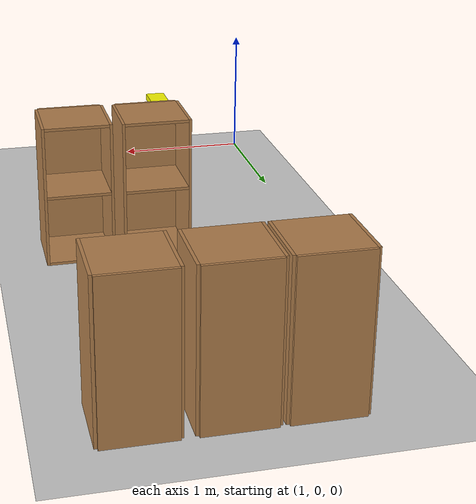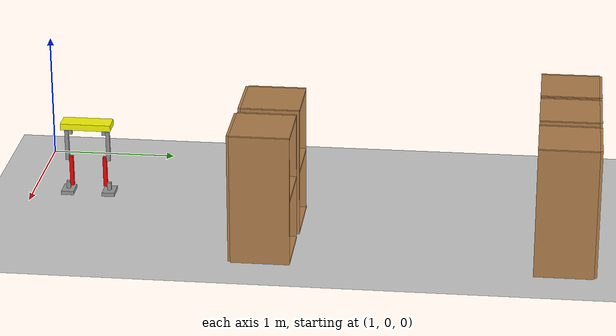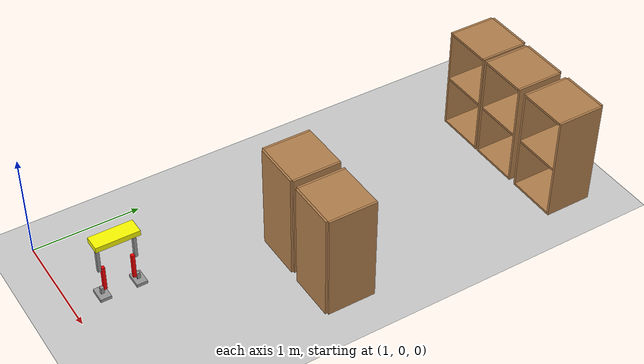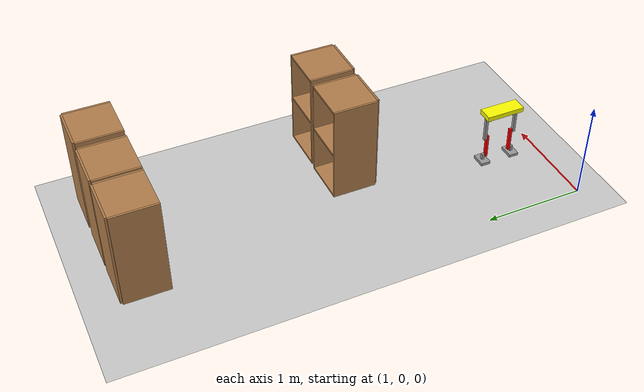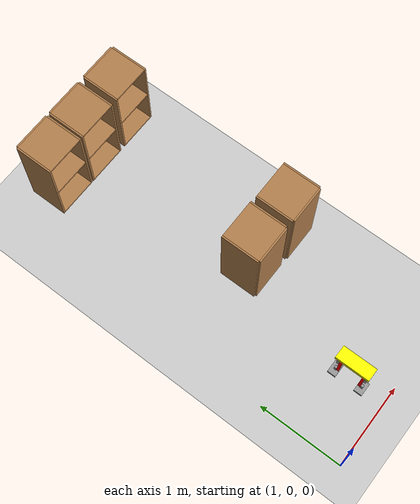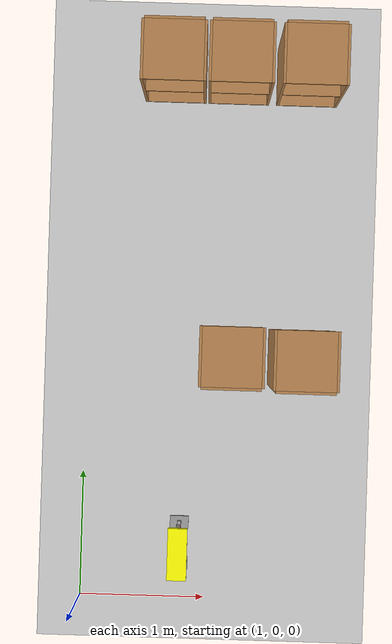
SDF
<sdf version="1.6">
 <world name="default">
  <model name="ground_plane">
   <static>1</static>
   <link name="link">
    <collision name="collision">
     <geometry><plane><normal>0 0 1</normal><size>100 100</size></plane></geometry>
     <surface><friction><ode><mu>100</mu><mu2>50</mu2></ode></friction></surface>
    </collision>
    <visual name="visual">
     <cast_shadows>0</cast_shadows>
     <geometry><plane><normal>0 0 1</normal><size>100 100</size></plane></geometry>
     <material>
      <script><uri>file://media/materials/scripts/gazebo.material</uri><name>Gazebo/Grey</name></script>
     </material>
    </visual>
   </link>
  </model>
  <model name="cabinet">
   <static>1</static>
   <link name="cabinet_bottom_plate">
    <inertial>
     <pose>0 0 -1 0 -0 0</pose>
     <inertia><ixx>2.05</ixx><ixy>0</ixy><ixz>0</ixz><iyy>2.05</iyy><iyz>0</iyz><izz>2.05</izz></inertia>
     <mass>25</mass>
    </inertial>
    <collision name="cabinet_bottom_plate_geom">
     <pose>0 0 0.01 0 -0 0</pose>
     <geometry><box><size>0.45 0.45 0.02</size></box></geometry>
    </collision>
    <visual name="cabinet_bottom_plate_geom_visual">
     <pose>0 0 0.01 0 -0 0</pose>
     <geometry><box><size>0.45 0.45 0.02</size></box></geometry>
     <material>
      <script><uri>file://media/materials/scripts/gazebo.material</uri><name>Gazebo/Wood</name></script>
     </material>
    </visual>
    <collision name="cabinet_bottom_plate_geom_cabinet_back_plate">
     <pose>0.235 0 0.51 0 -0 0</pose>
     <geometry><box><size>0.02 0.45 1.02</size></box></geometry>
    </collision>
    <visual name="cabinet_bottom_plate_geom_cabinet_back_plate_visual">
     <pose>0.235 0 0.51 0 -0 0</pose>
     <geometry><box><size>0.02 0.45 1.02</size></box></geometry>
     <material>
      <script><uri>file://media/materials/scripts/gazebo.material</uri><name>Gazebo/Wood</name></script>
     </material>
    </visual>
    <collision name="cabinet_bottom_plate_geom_cabinet_left_plate">
     <pose>0 0.235 0.51 0 -0 0</pose>
     <geometry><box><size>0.45 0.02 1.02</size></box></geometry>
    </collision>
    <visual name="cabinet_bottom_plate_geom_cabinet_left_plate_visual">
     <pose>0 0.235 0.51 0 -0 0</pose>
     <geometry><box><size>0.45 0.02 1.02</size></box></geometry>
     <material>
      <script><uri>file://media/materials/scripts/gazebo.material</uri><name>Gazebo/Wood</name></script>
     </material>
    </visual>
    <collision name="cabinet_bottom_plate_geom_cabinet_middle_plate">
     <pose>0 0 0.51 0 -0 0</pose>
     <geometry><box><size>0.45 0.45 0.02</size></box></geometry>
    </collision>
    <visual name="cabinet_bottom_plate_geom_cabinet_middle_plate_visual">
     <pose>0 0 0.51 0 -0 0</pose>
     <geometry><box><size>0.45 0.45 0.02</size></box></geometry>
     <material>
      <script><uri>file://media/materials/scripts/gazebo.material</uri><name>Gazebo/Wood</name></script>
     </material>
    </visual>
    <collision name="cabinet_bottom_plate_geom_cabinet_right_plate">
     <pose>0 -0.235 0.51 0 -0 0</pose>
     <geometry><box><size>0.45 0.02 1.02</size></box></geometry>
    </collision>
    <visual name="cabinet_bottom_plate_geom_cabinet_right_plate_visual">
     <pose>0 -0.235 0.51 0 -0 0</pose>
     <geometry><box><size>0.45 0.02 1.02</size></box></geometry>
     <material>
      <script><uri>file://media/materials/scripts/gazebo.material</uri><name>Gazebo/Wood</name></script>
     </material>
    </visual>
    <collision name="cabinet_bottom_plate_geom_cabinet_top_plate">
     <pose>0 0 1.01 0 -0 0</pose>
     <geometry><box><size>0.45 0.45 0.02</size></box></geometry>
    </collision>
    <visual name="cabinet_bottom_plate_geom_cabinet_top_plate_visual">
     <pose>0 0 1.01 0 -0 0</pose>
     <geometry><box><size>0.45 0.45 0.02</size></box></geometry>
     <material>
      <script><uri>file://media/materials/scripts/gazebo.material</uri><name>Gazebo/Wood</name></script>
     </material>
    </visual>
   </link>
   <pose>2.16087 1.98414 0 0 0 -1.5708</pose>
  </model>
  <model name="cabinet_0">
   <static>1</static>
   <link name="cabinet_bottom_plate">
    <inertial>
     <pose>0 0 -1 0 -0 0</pose>
     <inertia><ixx>2.05</ixx><ixy>0</ixy><ixz>0</ixz><iyy>2.05</iyy><iyz>0</iyz><izz>2.05</izz></inertia>
     <mass>25</mass>
    </inertial>
    <collision name="cabinet_bottom_plate_geom">
     <pose>0 0 0.01 0 -0 0</pose>
     <geometry><box><size>0.45 0.45 0.02</size></box></geometry>
    </collision>
    <visual name="cabinet_bottom_plate_geom_visual">
     <pose>0 0 0.01 0 -0 0</pose>
     <geometry><box><size>0.45 0.45 0.02</size></box></geometry>
     <material>
      <script><uri>file://media/materials/scripts/gazebo.material</uri><name>Gazebo/Wood</name></script>
     </material>
    </visual>
    <collision name="cabinet_bottom_plate_geom_cabinet_back_plate">
     <pose>0.235 0 0.51 0 -0 0</pose>
     <geometry><box><size>0.02 0.45 1.02</size></box></geometry>
    </collision>
    <visual name="cabinet_bottom_plate_geom_cabinet_back_plate_visual">
     <pose>0.235 0 0.51 0 -0 0</pose>
     <geometry><box><size>0.02 0.45 1.02</size></box></geometry>
     <material>
      <script><uri>file://media/materials/scripts/gazebo.material</uri><name>Gazebo/Wood</name></script>
     </material>
    </visual>
    <collision name="cabinet_bottom_plate_geom_cabinet_left_plate">
     <pose>0 0.235 0.51 0 -0 0</pose>
     <geometry><box><size>0.45 0.02 1.02</size></box></geometry>
    </collision>
    <visual name="cabinet_bottom_plate_geom_cabinet_left_plate_visual">
     <pose>0 0.235 0.51 0 -0 0</pose>
     <geometry><box><size>0.45 0.02 1.02</size></box></geometry>
     <material>
      <script><uri>file://media/materials/scripts/gazebo.material</uri><name>Gazebo/Wood</name></script>
     </material>
    </visual>
    <collision name="cabinet_bottom_plate_geom_cabinet_middle_plate">
     <pose>0 0 0.51 0 -0 0</pose>
     <geometry><box><size>0.45 0.45 0.02</size></box></geometry>
    </collision>
    <visual name="cabinet_bottom_plate_geom_cabinet_middle_plate_visual">
     <pose>0 0 0.51 0 -0 0</pose>
     <geometry><box><size>0.45 0.45 0.02</size></box></geometry>
     <material>
      <script><uri>file://media/materials/scripts/gazebo.material</uri><name>Gazebo/Wood</name></script>
     </material>
    </visual>
    <collision name="cabinet_bottom_plate_geom_cabinet_right_plate">
     <pose>0 -0.235 0.51 0 -0 0</pose>
     <geometry><box><size>0.45 0.02 1.02</size></box></geometry>
    </collision>
    <visual name="cabinet_bottom_plate_geom_cabinet_right_plate_visual">
     <pose>0 -0.235 0.51 0 -0 0</pose>
     <geometry><box><size>0.45 0.02 1.02</size></box></geometry>
     <material>
      <script><uri>file://media/materials/scripts/gazebo.material</uri><name>Gazebo/Wood</name></script>
     </material>
    </visual>
    <collision name="cabinet_bottom_plate_geom_cabinet_top_plate">
     <pose>0 0 1.01 0 -0 0</pose>
     <geometry><box><size>0.45 0.45 0.02</size></box></geometry>
    </collision>
    <visual name="cabinet_bottom_plate_geom_cabinet_top_plate_visual">
     <pose>0 0 1.01 0 -0 0</pose>
     <geometry><box><size>0.45 0.45 0.02</size></box></geometry>
     <material>
      <script><uri>file://media/materials/scripts/gazebo.material</uri><name>Gazebo/Wood</name></script>
     </material>
    </visual>
   </link>
   <pose>2.71494 1.97132 0 0 0 -1.5708</pose>
  </model>
  <model name="cabinet_1">
   <static>1</static>
   <link name="cabinet_bottom_plate">
    <inertial>
     <pose>0 0 -1 0 -0 0</pose>
     <inertia><ixx>2.05</ixx><ixy>0</ixy><ixz>0</ixz><iyy>2.05</iyy><iyz>0</iyz><izz>2.05</izz></inertia>
     <mass>25</mass>
    </inertial>
    <collision name="cabinet_bottom_plate_geom">
     <pose>0 0 0.01 0 -0 0</pose>
     <geometry><box><size>0.45 0.45 0.02</size></box></geometry>
    </collision>
    <visual name="cabinet_bottom_plate_geom_visual">
     <pose>0 0 0.01 0 -0 0</pose>
     <geometry><box><size>0.45 0.45 0.02</size></box></geometry>
     <material>
      <script><uri>file://media/materials/scripts/gazebo.material</uri><name>Gazebo/Wood</name></script>
     </material>
    </visual>
    <collision name="cabinet_bottom_plate_geom_cabinet_back_plate">
     <pose>0.235 0 0.51 0 -0 0</pose>
     <geometry><box><size>0.02 0.45 1.02</size></box></geometry>
    </collision>
    <visual name="cabinet_bottom_plate_geom_cabinet_back_plate_visual">
     <pose>0.235 0 0.51 0 -0 0</pose>
     <geometry><box><size>0.02 0.45 1.02</size></box></geometry>
     <material>
      <script><uri>file://media/materials/scripts/gazebo.material</uri><name>Gazebo/Wood</name></script>
     </material>
    </visual>
    <collision name="cabinet_bottom_plate_geom_cabinet_left_plate">
     <pose>0 0.235 0.51 0 -0 0</pose>
     <geometry><box><size>0.45 0.02 1.02</size></box></geometry>
    </collision>
    <visual name="cabinet_bottom_plate_geom_cabinet_left_plate_visual">
     <pose>0 0.235 0.51 0 -0 0</pose>
     <geometry><box><size>0.45 0.02 1.02</size></box></geometry>
     <material>
      <script><uri>file://media/materials/scripts/gazebo.material</uri><name>Gazebo/Wood</name></script>
     </material>
    </visual>
    <collision name="cabinet_bottom_plate_geom_cabinet_middle_plate">
     <pose>0 0 0.51 0 -0 0</pose>
     <geometry><box><size>0.45 0.45 0.02</size></box></geometry>
    </collision>
    <visual name="cabinet_bottom_plate_geom_cabinet_middle_plate_visual">
     <pose>0 0 0.51 0 -0 0</pose>
     <geometry><box><size>0.45 0.45 0.02</size></box></geometry>
     <material>
      <script><uri>file://media/materials/scripts/gazebo.material</uri><name>Gazebo/Wood</name></script>
     </material>
    </visual>
    <collision name="cabinet_bottom_plate_geom_cabinet_right_plate">
     <pose>0 -0.235 0.51 0 -0 0</pose>
     <geometry><box><size>0.45 0.02 1.02</size></box></geometry>
    </collision>
    <visual name="cabinet_bottom_plate_geom_cabinet_right_plate_visual">
     <pose>0 -0.235 0.51 0 -0 0</pose>
     <geometry><box><size>0.45 0.02 1.02</size></box></geometry>
     <material>
      <script><uri>file://media/materials/scripts/gazebo.material</uri><name>Gazebo/Wood</name></script>
     </material>
    </visual>
    <collision name="cabinet_bottom_plate_geom_cabinet_top_plate">
     <pose>0 0 1.01 0 -0 0</pose>
     <geometry><box><size>0.45 0.45 0.02</size></box></geometry>
    </collision>
    <visual name="cabinet_bottom_plate_geom_cabinet_top_plate_visual">
     <pose>0 0 1.01 0 -0 0</pose>
     <geometry><box><size>0.45 0.45 0.02</size></box></geometry>
     <material>
      <script><uri>file://media/materials/scripts/gazebo.material</uri><name>Gazebo/Wood</name></script>
     </material>
    </visual>
   </link>
   <pose>2.72118 4.23872 0 0 -0 1.5708</pose>
  </model>
  <model name="cabinet_1_clone">
   <static>1</static>
   <link name="cabinet_bottom_plate">
    <inertial>
     <pose>0 0 -1 0 -0 0</pose>
     <inertia><ixx>2.05</ixx><ixy>0</ixy><ixz>0</ixz><iyy>2.05</iyy><iyz>0</iyz><izz>2.05</izz></inertia>
     <mass>25</mass>
    </inertial>
    <collision name="cabinet_bottom_plate_geom">
     <pose>0 0 0.01 0 -0 0</pose>
     <geometry><box><size>0.45 0.45 0.02</size></box></geometry>
    </collision>
    <visual name="cabinet_bottom_plate_geom_visual">
     <pose>0 0 0.01 0 -0 0</pose>
     <geometry><box><size>0.45 0.45 0.02</size></box></geometry>
     <material>
      <script><uri>file://media/materials/scripts/gazebo.material</uri><name>Gazebo/Wood</name></script>
     </material>
    </visual>
    <collision name="cabinet_bottom_plate_geom_cabinet_back_plate">
     <pose>0.235 0 0.51 0 -0 0</pose>
     <geometry><box><size>0.02 0.45 1.02</size></box></geometry>
    </collision>
    <visual name="cabinet_bottom_plate_geom_cabinet_back_plate_visual">
     <pose>0.235 0 0.51 0 -0 0</pose>
     <geometry><box><size>0.02 0.45 1.02</size></box></geometry>
     <material>
      <script><uri>file://media/materials/scripts/gazebo.material</uri><name>Gazebo/Wood</name></script>
     </material>
    </visual>
    <collision name="cabinet_bottom_plate_geom_cabinet_left_plate">
     <pose>0 0.235 0.51 0 -0 0</pose>
     <geometry><box><size>0.45 0.02 1.02</size></box></geometry>
    </collision>
    <visual name="cabinet_bottom_plate_geom_cabinet_left_plate_visual">
     <pose>0 0.235 0.51 0 -0 0</pose>
     <geometry><box><size>0.45 0.02 1.02</size></box></geometry>
     <material>
      <script><uri>file://media/materials/scripts/gazebo.material</uri><name>Gazebo/Wood</name></script>
     </material>
    </visual>
    <collision name="cabinet_bottom_plate_geom_cabinet_middle_plate">
     <pose>0 0 0.51 0 -0 0</pose>
     <geometry><box><size>0.45 0.45 0.02</size></box></geometry>
    </collision>
    <visual name="cabinet_bottom_plate_geom_cabinet_middle_plate_visual">
     <pose>0 0 0.51 0 -0 0</pose>
     <geometry><box><size>0.45 0.45 0.02</size></box></geometry>
     <material>
      <script><uri>file://media/materials/scripts/gazebo.material</uri><name>Gazebo/Wood</name></script>
     </material>
    </visual>
    <collision name="cabinet_bottom_plate_geom_cabinet_right_plate">
     <pose>0 -0.235 0.51 0 -0 0</pose>
     <geometry><box><size>0.45 0.02 1.02</size></box></geometry>
    </collision>
    <visual name="cabinet_bottom_plate_geom_cabinet_right_plate_visual">
     <pose>0 -0.235 0.51 0 -0 0</pose>
     <geometry><box><size>0.45 0.02 1.02</size></box></geometry>
     <material>
      <script><uri>file://media/materials/scripts/gazebo.material</uri><name>Gazebo/Wood</name></script>
     </material>
    </visual>
    <collision name="cabinet_bottom_plate_geom_cabinet_top_plate">
     <pose>0 0 1.01 0 -0 0</pose>
     <geometry><box><size>0.45 0.45 0.02</size></box></geometry>
    </collision>
    <visual name="cabinet_bottom_plate_geom_cabinet_top_plate_visual">
     <pose>0 0 1.01 0 -0 0</pose>
     <geometry><box><size>0.45 0.45 0.02</size></box></geometry>
     <material>
      <script><uri>file://media/materials/scripts/gazebo.material</uri><name>Gazebo/Wood</name></script>
     </material>
    </visual>
   </link>
   <pose>2.16972 4.23875 0 0 -0 1.5708</pose>
  </model>
  <model name="cabinet_1_clone_0">
   <static>1</static>
   <link name="cabinet_bottom_plate">
    <inertial>
     <pose>0 0 -1 0 -0 0</pose>
     <inertia><ixx>2.05</ixx><ixy>0</ixy><ixz>0</ixz><iyy>2.05</iyy><iyz>0</iyz><izz>2.05</izz></inertia>
     <mass>25</mass>
    </inertial>
    <collision name="cabinet_bottom_plate_geom">
     <pose>0 0 0.01 0 -0 0</pose>
     <geometry><box><size>0.45 0.45 0.02</size></box></geometry>
    </collision>
    <visual name="cabinet_bottom_plate_geom_visual">
     <pose>0 0 0.01 0 -0 0</pose>
     <geometry><box><size>0.45 0.45 0.02</size></box></geometry>
     <material>
      <script><uri>file://media/materials/scripts/gazebo.material</uri><name>Gazebo/Wood</name></script>
     </material>
    </visual>
    <collision name="cabinet_bottom_plate_geom_cabinet_back_plate">
     <pose>0.235 0 0.51 0 -0 0</pose>
     <geometry><box><size>0.02 0.45 1.02</size></box></geometry>
    </collision>
    <visual name="cabinet_bottom_plate_geom_cabinet_back_plate_visual">
     <pose>0.235 0 0.51 0 -0 0</pose>
     <geometry><box><size>0.02 0.45 1.02</size></box></geometry>
     <material>
      <script><uri>file://media/materials/scripts/gazebo.material</uri><name>Gazebo/Wood</name></script>
     </material>
    </visual>
    <collision name="cabinet_bottom_plate_geom_cabinet_left_plate">
     <pose>0 0.235 0.51 0 -0 0</pose>
     <geometry><box><size>0.45 0.02 1.02</size></box></geometry>
    </collision>
    <visual name="cabinet_bottom_plate_geom_cabinet_left_plate_visual">
     <pose>0 0.235 0.51 0 -0 0</pose>
     <geometry><box><size>0.45 0.02 1.02</size></box></geometry>
     <material>
      <script><uri>file://media/materials/scripts/gazebo.material</uri><name>Gazebo/Wood</name></script>
     </material>
    </visual>
    <collision name="cabinet_bottom_plate_geom_cabinet_middle_plate">
     <pose>0 0 0.51 0 -0 0</pose>
     <geometry><box><size>0.45 0.45 0.02</size></box></geometry>
    </collision>
    <visual name="cabinet_bottom_plate_geom_cabinet_middle_plate_visual">
     <pose>0 0 0.51 0 -0 0</pose>
     <geometry><box><size>0.45 0.45 0.02</size></box></geometry>
     <material>
      <script><uri>file://media/materials/scripts/gazebo.material</uri><name>Gazebo/Wood</name></script>
     </material>
    </visual>
    <collision name="cabinet_bottom_plate_geom_cabinet_right_plate">
     <pose>0 -0.235 0.51 0 -0 0</pose>
     <geometry><box><size>0.45 0.02 1.02</size></box></geometry>
    </collision>
    <visual name="cabinet_bottom_plate_geom_cabinet_right_plate_visual">
     <pose>0 -0.235 0.51 0 -0 0</pose>
     <geometry><box><size>0.45 0.02 1.02</size></box></geometry>
     <material>
      <script><uri>file://media/materials/scripts/gazebo.material</uri><name>Gazebo/Wood</name></script>
     </material>
    </visual>
    <collision name="cabinet_bottom_plate_geom_cabinet_top_plate">
     <pose>0 0 1.01 0 -0 0</pose>
     <geometry><box><size>0.45 0.45 0.02</size></box></geometry>
    </collision>
    <visual name="cabinet_bottom_plate_geom_cabinet_top_plate_visual">
     <pose>0 0 1.01 0 -0 0</pose>
     <geometry><box><size>0.45 0.45 0.02</size></box></geometry>
     <material>
      <script><uri>file://media/materials/scripts/gazebo.material</uri><name>Gazebo/Wood</name></script>
     </material>
    </visual>
   </link>
   <pose>1.66293 4.2393 0 0 -0 1.5708</pose>
  </model>
  <model name="HumanoidRobot_0_clone">
   <link name="link_1">
    <inertial>
     <mass>1</mass>
     <inertia>
      <ixx>0.166667</ixx>
      <ixy>0</ixy>
      <ixz>0</ixz>
      <iyy>0.166667</iyy>
      <iyz>0</iyz>
      <izz>0.166667</izz>
     </inertia>
    </inertial>
    <pose>0 0 0.585 0 -0 0</pose>
    <self_collide>1</self_collide>
    <visual name="ModelPreview_0::link_1::visual_2">
     <pose>0 -0.135 -0.055 0 -0 0</pose>
     <geometry><box><size>0.03 0.03 0.06</size></box></geometry>
     <material>
      <lighting>1</lighting>
      <script><uri>file://media/materials/scripts/gazebo.material</uri><name>Gazebo/Grey</name></script>
      <shader type="vertex"><normal_map>__default__</normal_map></shader>
      <ambient>0.3 0.3 0.3 1</ambient>
      <diffuse>0.7 0.7 0.7 1</diffuse>
      <specular>0.01 0.01 0.01 1</specular>
      <emissive>0 0 0 1</emissive>
     </material>
    </visual>
    <visual name="ModelPreview_0::link_1::visual_1">
     <pose>0 0.135 -0.055 0 -0 0</pose>
     <geometry><box><size>0.03 0.03 0.06</size></box></geometry>
     <material>
      <lighting>1</lighting>
      <script><uri>file://media/materials/scripts/gazebo.material</uri><name>Gazebo/Grey</name></script>
      <shader type="vertex"><normal_map>__default__</normal_map></shader>
      <ambient>0.3 0.3 0.3 1</ambient>
      <diffuse>0.7 0.7 0.7 1</diffuse>
      <specular>0.01 0.01 0.01 1</specular>
      <emissive>0 0 0 1</emissive>
     </material>
    </visual>
    <visual name="visual">
     <geometry><box><size>0.15 0.4 0.05</size></box></geometry>
     <material>
      <lighting>1</lighting>
      <script><uri>file://media/materials/scripts/gazebo.material</uri><name>Gazebo/Grey</name></script>
      <shader type="vertex"><normal_map>__default__</normal_map></shader>
      <ambient>1 1 0 1</ambient>
      <diffuse>0.7 0.7 0.7 1</diffuse>
      <specular>0.01 0.01 0.01 1</specular>
      <emissive>0 0 0 1</emissive>
     </material>
    </visual>
    <collision name="collision">
     <geometry><box><size>0.15 0.4 0.05</size></box></geometry>
     <surface>
      <friction>
       <ode><mu>1</mu><mu2>1</mu2><fdir1>0 0 0</fdir1><slip1>0</slip1><slip2>0</slip2></ode>
       <torsional>
        <coefficient>1</coefficient>
        <patch_radius>0</patch_radius>
        <surface_radius>0</surface_radius>
        <use_patch_radius>1</use_patch_radius>
        <ode><slip>0</slip></ode>
       </torsional>
      </friction>
      <bounce><restitution_coefficient>0</restitution_coefficient><threshold>1e+06</threshold></bounce>
      <contact>
       <collide_without_contact>0</collide_without_contact>
       <collide_without_contact_bitmask>1</collide_without_contact_bitmask>
       <collide_bitmask>1</collide_bitmask>
       <ode>
        <soft_cfm>0</soft_cfm>
        <soft_erp>0.2</soft_erp>
        <kp>1e+13</kp>
        <kd>1</kd>
        <max_vel>0.01</max_vel>
        <min_depth>0</min_depth>
       </ode>
       <bullet>
        <split_impulse>1</split_impulse>
        <split_impulse_penetration_threshold>-0.01</split_impulse_penetration_threshold>
        <soft_cfm>0</soft_cfm>
        <soft_erp>0.2</soft_erp>
        <kp>1e+13</kp>
        <kd>1</kd>
       </bullet>
      </contact>
     </surface>
    </collision>
    <collision name="collision_2">
     <pose>0 -0.135 -0.055 0 -0 0</pose>
     <geometry><box><size>0.03 0.03 0.06</size></box></geometry>
     <surface>
      <friction>
       <ode><mu>1</mu><mu2>1</mu2><fdir1>0 0 0</fdir1><slip1>0</slip1><slip2>0</slip2></ode>
       <torsional>
        <coefficient>1</coefficient>
        <patch_radius>0</patch_radius>
        <surface_radius>0</surface_radius>
        <use_patch_radius>1</use_patch_radius>
        <ode><slip>0</slip></ode>
       </torsional>
      </friction>
      <bounce><restitution_coefficient>0</restitution_coefficient><threshold>1e+06</threshold></bounce>
      <contact>
       <collide_without_contact>0</collide_without_contact>
       <collide_without_contact_bitmask>1</collide_without_contact_bitmask>
       <collide_bitmask>1</collide_bitmask>
       <ode>
        <soft_cfm>0</soft_cfm>
        <soft_erp>0.2</soft_erp>
        <kp>1e+13</kp>
        <kd>1</kd>
        <max_vel>0.01</max_vel>
        <min_depth>0</min_depth>
       </ode>
       <bullet>
        <split_impulse>1</split_impulse>
        <split_impulse_penetration_threshold>-0.01</split_impulse_penetration_threshold>
        <soft_cfm>0</soft_cfm>
        <soft_erp>0.2</soft_erp>
        <kp>1e+13</kp>
        <kd>1</kd>
       </bullet>
      </contact>
     </surface>
    </collision>
    <collision name="collision_1">
     <pose>0 0.135 -0.055 0 -0 0</pose>
     <geometry><box><size>0.03 0.03 0.06</size></box></geometry>
     <surface>
      <friction>
       <ode><mu>1</mu><mu2>1</mu2><fdir1>0 0 0</fdir1><slip1>0</slip1><slip2>0</slip2></ode>
       <torsional>
        <coefficient>1</coefficient>
        <patch_radius>0</patch_radius>
        <surface_radius>0</surface_radius>
        <use_patch_radius>1</use_patch_radius>
        <ode><slip>0</slip></ode>
       </torsional>
      </friction>
      <bounce><restitution_coefficient>0</restitution_coefficient><threshold>1e+06</threshold></bounce>
      <contact>
       <collide_without_contact>0</collide_without_contact>
       <collide_without_contact_bitmask>1</collide_without_contact_bitmask>
       <collide_bitmask>1</collide_bitmask>
       <ode>
        <soft_cfm>0</soft_cfm>
        <soft_erp>0.2</soft_erp>
        <kp>1e+13</kp>
        <kd>1</kd>
        <max_vel>0.01</max_vel>
        <min_depth>0</min_depth>
       </ode>
       <bullet>
        <split_impulse>1</split_impulse>
        <split_impulse_penetration_threshold>-0.01</split_impulse_penetration_threshold>
        <soft_cfm>0</soft_cfm>
        <soft_erp>0.2</soft_erp>
        <kp>1e+13</kp>
        <kd>1</kd>
       </bullet>
      </contact>
     </surface>
    </collision>
   </link>
   <link name="link_0">
    <inertial>
     <mass>1</mass>
     <inertia>
      <ixx>0.166667</ixx>
      <ixy>0</ixy>
      <ixz>0</ixz>
      <iyy>0.166667</iyy>
      <iyz>0</iyz>
      <izz>0.166667</izz>
     </inertia>
    </inertial>
    <pose>0 -0.165 0.015 0 -0 0</pose>
    <self_collide>1</self_collide>
    <visual name="ModelPreview_1::link_0::visual_1">
     <pose>0 0 0.045 0 -0 0</pose>
     <geometry><box><size>0.03 0.03 0.06</size></box></geometry>
     <material>
      <lighting>1</lighting>
      <script><uri>file://media/materials/scripts/gazebo.material</uri><name>Gazebo/Grey</name></script>
      <shader type="vertex"><normal_map>__default__</normal_map></shader>
      <ambient>0.3 0.3 0.3 1</ambient>
      <diffuse>0.7 0.7 0.7 1</diffuse>
      <specular>0.01 0.01 0.01 1</specular>
      <emissive>0 0 0 1</emissive>
     </material>
    </visual>
    <visual name="visual">
     <geometry><box><size>0.15 0.1 0.03</size></box></geometry>
     <material>
      <lighting>1</lighting>
      <script><uri>file://media/materials/scripts/gazebo.material</uri><name>Gazebo/Grey</name></script>
      <shader type="vertex"><normal_map>__default__</normal_map></shader>
      <ambient>0.3 0.3 0.3 1</ambient>
      <diffuse>0.7 0.7 0.7 1</diffuse>
      <specular>0.01 0.01 0.01 1</specular>
      <emissive>0 0 0 1</emissive>
     </material>
    </visual>
    <collision name="collision_1">
     <pose>0 0 0.045 0 -0 0</pose>
     <geometry><box><size>0.03 0.03 0.06</size></box></geometry>
     <surface>
      <friction>
       <ode><mu>1</mu><mu2>1</mu2><fdir1>0 0 0</fdir1><slip1>0</slip1><slip2>0</slip2></ode>
       <torsional>
        <coefficient>1</coefficient>
        <patch_radius>0</patch_radius>
        <surface_radius>0</surface_radius>
        <use_patch_radius>1</use_patch_radius>
        <ode><slip>0</slip></ode>
       </torsional>
      </friction>
      <bounce><restitution_coefficient>0</restitution_coefficient><threshold>1e+06</threshold></bounce>
      <contact>
       <collide_without_contact>0</collide_without_contact>
       <collide_without_contact_bitmask>1</collide_without_contact_bitmask>
       <collide_bitmask>1</collide_bitmask>
       <ode>
        <soft_cfm>0</soft_cfm>
        <soft_erp>0.2</soft_erp>
        <kp>1e+13</kp>
        <kd>1</kd>
        <max_vel>0.01</max_vel>
        <min_depth>0</min_depth>
       </ode>
       <bullet>
        <split_impulse>1</split_impulse>
        <split_impulse_penetration_threshold>-0.01</split_impulse_penetration_threshold>
        <soft_cfm>0</soft_cfm>
        <soft_erp>0.2</soft_erp>
        <kp>1e+13</kp>
        <kd>1</kd>
       </bullet>
      </contact>
     </surface>
    </collision>
    <collision name="collision">
     <geometry><box><size>0.15 0.1 0.03</size></box></geometry>
     <surface>
      <friction>
       <ode><mu>1</mu><mu2>1</mu2><fdir1>0 0 0</fdir1><slip1>0</slip1><slip2>0</slip2></ode>
       <torsional>
        <coefficient>1</coefficient>
        <patch_radius>0</patch_radius>
        <surface_radius>0</surface_radius>
        <use_patch_radius>1</use_patch_radius>
        <ode><slip>0</slip></ode>
       </torsional>
      </friction>
      <bounce><restitution_coefficient>0</restitution_coefficient><threshold>1e+06</threshold></bounce>
      <contact>
       <collide_without_contact>0</collide_without_contact>
       <collide_without_contact_bitmask>1</collide_without_contact_bitmask>
       <collide_bitmask>1</collide_bitmask>
       <ode>
        <soft_cfm>0</soft_cfm>
        <soft_erp>0.2</soft_erp>
        <kp>1e+13</kp>
        <kd>1</kd>
        <max_vel>0.01</max_vel>
        <min_depth>0</min_depth>
       </ode>
       <bullet>
        <split_impulse>1</split_impulse>
        <split_impulse_penetration_threshold>-0.01</split_impulse_penetration_threshold>
        <soft_cfm>0</soft_cfm>
        <soft_erp>0.2</soft_erp>
        <kp>1e+13</kp>
        <kd>1</kd>
       </bullet>
      </contact>
     </surface>
    </collision>
   </link>
   <link name="link_0_clone">
    <inertial>
     <mass>1</mass>
     <inertia>
      <ixx>0.166667</ixx>
      <ixy>0</ixy>
      <ixz>0</ixz>
      <iyy>0.166667</iyy>
      <iyz>0</iyz>
      <izz>0.166667</izz>
     </inertia>
    </inertial>
    <pose>0 0.165 0.015 0 -0 0</pose>
    <self_collide>1</self_collide>
    <visual name="visual">
     <geometry><box><size>0.15 0.1 0.03</size></box></geometry>
     <material>
      <lighting>1</lighting>
      <script><uri>file://media/materials/scripts/gazebo.material</uri><name>Gazebo/Grey</name></script>
      <shader type="vertex"><normal_map>__default__</normal_map></shader>
      <ambient>0.3 0.3 0.3 1</ambient>
      <diffuse>0.7 0.7 0.7 1</diffuse>
      <specular>0.01 0.01 0.01 1</specular>
      <emissive>0 0 0 1</emissive>
     </material>
    </visual>
    <visual name="visual_1">
     <pose>0 0 0.045 0 -0 0</pose>
     <geometry><box><size>0.03 0.03 0.06</size></box></geometry>
     <material>
      <lighting>1</lighting>
      <script><uri>file://media/materials/scripts/gazebo.material</uri><name>Gazebo/Grey</name></script>
      <shader type="vertex"><normal_map>__default__</normal_map></shader>
      <ambient>0.3 0.3 0.3 1</ambient>
      <diffuse>0.7 0.7 0.7 1</diffuse>
      <specular>0.01 0.01 0.01 1</specular>
      <emissive>0 0 0 1</emissive>
     </material>
    </visual>
    <collision name="collision">
     <geometry><box><size>0.15 0.1 0.03</size></box></geometry>
     <surface>
      <friction>
       <ode><mu>1</mu><mu2>1</mu2><fdir1>0 0 0</fdir1><slip1>0</slip1><slip2>0</slip2></ode>
       <torsional>
        <coefficient>1</coefficient>
        <patch_radius>0</patch_radius>
        <surface_radius>0</surface_radius>
        <use_patch_radius>1</use_patch_radius>
        <ode><slip>0</slip></ode>
       </torsional>
      </friction>
      <bounce><restitution_coefficient>0</restitution_coefficient><threshold>1e+06</threshold></bounce>
      <contact>
       <collide_without_contact>0</collide_without_contact>
       <collide_without_contact_bitmask>1</collide_without_contact_bitmask>
       <collide_bitmask>1</collide_bitmask>
       <ode>
        <soft_cfm>0</soft_cfm>
        <soft_erp>0.2</soft_erp>
        <kp>1e+13</kp>
        <kd>1</kd>
        <max_vel>0.01</max_vel>
        <min_depth>0</min_depth>
       </ode>
       <bullet>
        <split_impulse>1</split_impulse>
        <split_impulse_penetration_threshold>-0.01</split_impulse_penetration_threshold>
        <soft_cfm>0</soft_cfm>
        <soft_erp>0.2</soft_erp>
        <kp>1e+13</kp>
        <kd>1</kd>
       </bullet>
      </contact>
     </surface>
    </collision>
    <collision name="collision_1">
     <pose>0 0 0.045 0 -0 0</pose>
     <geometry><box><size>0.03 0.03 0.06</size></box></geometry>
     <surface>
      <friction>
       <ode><mu>1</mu><mu2>1</mu2><fdir1>0 0 0</fdir1><slip1>0</slip1><slip2>0</slip2></ode>
       <torsional>
        <coefficient>1</coefficient>
        <patch_radius>0</patch_radius>
        <surface_radius>0</surface_radius>
        <use_patch_radius>1</use_patch_radius>
        <ode><slip>0</slip></ode>
       </torsional>
      </friction>
      <bounce><restitution_coefficient>0</restitution_coefficient><threshold>1e+06</threshold></bounce>
      <contact>
       <collide_without_contact>0</collide_without_contact>
       <collide_without_contact_bitmask>1</collide_without_contact_bitmask>
       <collide_bitmask>1</collide_bitmask>
       <ode>
        <soft_cfm>0</soft_cfm>
        <soft_erp>0.2</soft_erp>
        <kp>1e+13</kp>
        <kd>1</kd>
        <max_vel>0.01</max_vel>
        <min_depth>0</min_depth>
       </ode>
       <bullet>
        <split_impulse>1</split_impulse>
        <split_impulse_penetration_threshold>-0.01</split_impulse_penetration_threshold>
        <soft_cfm>0</soft_cfm>
        <soft_erp>0.2</soft_erp>
        <kp>1e+13</kp>
        <kd>1</kd>
       </bullet>
      </contact>
     </surface>
    </collision>
   </link>
   <link name="link_2">
    <inertial>
     <mass>1</mass>
     <inertia>
      <ixx>0.166667</ixx>
      <ixy>0</ixy>
      <ixz>0</ixz>
      <iyy>0.166667</iyy>
      <iyz>0</iyz>
      <izz>0.166667</izz>
     </inertia>
    </inertial>
    <pose>0 -0.165 0.405 0 0.023326 0</pose>
    <self_collide>1</self_collide>
    <visual name="visual">
     <geometry><box><size>0.03 0.03 0.25</size></box></geometry>
     <material>
      <lighting>1</lighting>
      <script><uri>file://media/materials/scripts/gazebo.material</uri><name>Gazebo/Grey</name></script>
      <shader type="vertex"><normal_map>__default__</normal_map></shader>
      <ambient>0.3 0.3 0.3 1</ambient>
      <diffuse>0.7 0.7 0.7 1</diffuse>
      <specular>0.01 0.01 0.01 1</specular>
      <emissive>0 0 0 1</emissive>
     </material>
    </visual>
    <collision name="collision">
     <geometry><box><size>0.03 0.03 0.25</size></box></geometry>
     <surface>
      <friction>
       <ode><mu>1</mu><mu2>1</mu2><fdir1>0 0 0</fdir1><slip1>0</slip1><slip2>0</slip2></ode>
       <torsional>
        <coefficient>1</coefficient>
        <patch_radius>0</patch_radius>
        <surface_radius>0</surface_radius>
        <use_patch_radius>1</use_patch_radius>
        <ode><slip>0</slip></ode>
       </torsional>
      </friction>
      <bounce><restitution_coefficient>0</restitution_coefficient><threshold>1e+06</threshold></bounce>
      <contact>
       <collide_without_contact>0</collide_without_contact>
       <collide_without_contact_bitmask>1</collide_without_contact_bitmask>
       <collide_bitmask>1</collide_bitmask>
       <ode>
        <soft_cfm>0</soft_cfm>
        <soft_erp>0.2</soft_erp>
        <kp>1e+13</kp>
        <kd>1</kd>
        <max_vel>0.01</max_vel>
        <min_depth>0</min_depth>
       </ode>
       <bullet>
        <split_impulse>1</split_impulse>
        <split_impulse_penetration_threshold>-0.01</split_impulse_penetration_threshold>
        <soft_cfm>0</soft_cfm>
        <soft_erp>0.2</soft_erp>
        <kp>1e+13</kp>
        <kd>1</kd>
       </bullet>
      </contact>
     </surface>
    </collision>
   </link>
   <link name="link_2_clone">
    <inertial>
     <mass>1</mass>
     <inertia>
      <ixx>0.166667</ixx>
      <ixy>0</ixy>
      <ixz>0</ixz>
      <iyy>0.166667</iyy>
      <iyz>0</iyz>
      <izz>0.166667</izz>
     </inertia>
    </inertial>
    <pose>0 -0.135 0.185 0 0.023326 0</pose>
    <self_collide>1</self_collide>
    <visual name="visual">
     <geometry><box><size>0.03 0.03 0.25</size></box></geometry>
     <material>
      <lighting>1</lighting>
      <script><uri>file://media/materials/scripts/gazebo.material</uri><name>Gazebo/Grey</name></script>
      <shader type="vertex"><normal_map>__default__</normal_map></shader>
      <ambient>1 0 0 1</ambient>
      <diffuse>0.7 0.7 0.7 1</diffuse>
      <specular>0.01 0.01 0.01 1</specular>
      <emissive>0 0 0 1</emissive>
     </material>
    </visual>
    <collision name="collision">
     <geometry><box><size>0.03 0.03 0.25</size></box></geometry>
     <surface>
      <friction>
       <ode><mu>1</mu><mu2>1</mu2><fdir1>0 0 0</fdir1><slip1>0</slip1><slip2>0</slip2></ode>
       <torsional>
        <coefficient>1</coefficient>
        <patch_radius>0</patch_radius>
        <surface_radius>0</surface_radius>
        <use_patch_radius>1</use_patch_radius>
        <ode><slip>0</slip></ode>
       </torsional>
      </friction>
      <bounce><restitution_coefficient>0</restitution_coefficient><threshold>1e+06</threshold></bounce>
      <contact>
       <collide_without_contact>0</collide_without_contact>
       <collide_without_contact_bitmask>1</collide_without_contact_bitmask>
       <collide_bitmask>1</collide_bitmask>
       <ode>
        <soft_cfm>0</soft_cfm>
        <soft_erp>0.2</soft_erp>
        <kp>1e+13</kp>
        <kd>1</kd>
        <max_vel>0.01</max_vel>
        <min_depth>0</min_depth>
       </ode>
       <bullet>
        <split_impulse>1</split_impulse>
        <split_impulse_penetration_threshold>-0.01</split_impulse_penetration_threshold>
        <soft_cfm>0</soft_cfm>
        <soft_erp>0.2</soft_erp>
        <kp>1e+13</kp>
        <kd>1</kd>
       </bullet>
      </contact>
     </surface>
    </collision>
   </link>
   <link name="link_2_clone_0">
    <inertial>
     <mass>1</mass>
     <inertia>
      <ixx>0.166667</ixx>
      <ixy>0</ixy>
      <ixz>0</ixz>
      <iyy>0.166667</iyy>
      <iyz>0</iyz>
      <izz>0.166667</izz>
     </inertia>
    </inertial>
    <pose>0 0.165 0.405 0 0.023326 0</pose>
    <self_collide>1</self_collide>
    <visual name="visual">
     <geometry><box><size>0.03 0.03 0.25</size></box></geometry>
     <material>
      <lighting>1</lighting>
      <script><uri>file://media/materials/scripts/gazebo.material</uri><name>Gazebo/Grey</name></script>
      <shader type="vertex"><normal_map>__default__</normal_map></shader>
      <ambient>0.3 0.3 0.3 1</ambient>
      <diffuse>0.7 0.7 0.7 1</diffuse>
      <specular>0.01 0.01 0.01 1</specular>
      <emissive>0 0 0 1</emissive>
     </material>
    </visual>
    <collision name="collision">
     <geometry><box><size>0.03 0.03 0.25</size></box></geometry>
     <surface>
      <friction>
       <ode><mu>1</mu><mu2>1</mu2><fdir1>0 0 0</fdir1><slip1>0</slip1><slip2>0</slip2></ode>
       <torsional>
        <coefficient>1</coefficient>
        <patch_radius>0</patch_radius>
        <surface_radius>0</surface_radius>
        <use_patch_radius>1</use_patch_radius>
        <ode><slip>0</slip></ode>
       </torsional>
      </friction>
      <bounce><restitution_coefficient>0</restitution_coefficient><threshold>1e+06</threshold></bounce>
      <contact>
       <collide_without_contact>0</collide_without_contact>
       <collide_without_contact_bitmask>1</collide_without_contact_bitmask>
       <collide_bitmask>1</collide_bitmask>
       <ode>
        <soft_cfm>0</soft_cfm>
        <soft_erp>0.2</soft_erp>
        <kp>1e+13</kp>
        <kd>1</kd>
        <max_vel>0.01</max_vel>
        <min_depth>0</min_depth>
       </ode>
       <bullet>
        <split_impulse>1</split_impulse>
        <split_impulse_penetration_threshold>-0.01</split_impulse_penetration_threshold>
        <soft_cfm>0</soft_cfm>
        <soft_erp>0.2</soft_erp>
        <kp>1e+13</kp>
        <kd>1</kd>
       </bullet>
      </contact>
     </surface>
    </collision>
   </link>
   <link name="link_2_clone_1">
    <inertial>
     <mass>1</mass>
     <inertia>
      <ixx>0.166667</ixx>
      <ixy>0</ixy>
      <ixz>0</ixz>
      <iyy>0.166667</iyy>
      <iyz>0</iyz>
      <izz>0.166667</izz>
     </inertia>
    </inertial>
    <pose>0 0.135 0.185 0 0.023326 0</pose>
    <self_collide>1</self_collide>
    <visual name="visual">
     <geometry><box><size>0.03 0.03 0.25</size></box></geometry>
     <material>
      <lighting>1</lighting>
      <script><uri>file://media/materials/scripts/gazebo.material</uri><name>Gazebo/Grey</name></script>
      <shader type="vertex"><normal_map>__default__</normal_map></shader>
      <ambient>1 0 0 1</ambient>
      <diffuse>0.7 0.7 0.7 1</diffuse>
      <specular>0.01 0.01 0.01 1</specular>
      <emissive>0 0 0 1</emissive>
     </material>
    </visual>
    <collision name="collision">
     <geometry><box><size>0.03 0.03 0.25</size></box></geometry>
     <surface>
      <friction>
       <ode><mu>1</mu><mu2>1</mu2><fdir1>0 0 0</fdir1><slip1>0</slip1><slip2>0</slip2></ode>
       <torsional>
        <coefficient>1</coefficient>
        <patch_radius>0</patch_radius>
        <surface_radius>0</surface_radius>
        <use_patch_radius>1</use_patch_radius>
        <ode><slip>0</slip></ode>
       </torsional>
      </friction>
      <bounce><restitution_coefficient>0</restitution_coefficient><threshold>1e+06</threshold></bounce>
      <contact>
       <collide_without_contact>0</collide_without_contact>
       <collide_without_contact_bitmask>1</collide_without_contact_bitmask>
       <collide_bitmask>1</collide_bitmask>
       <ode>
        <soft_cfm>0</soft_cfm>
        <soft_erp>0.2</soft_erp>
        <kp>1e+13</kp>
        <kd>1</kd>
        <max_vel>0.01</max_vel>
        <min_depth>0</min_depth>
       </ode>
       <bullet>
        <split_impulse>1</split_impulse>
        <split_impulse_penetration_threshold>-0.01</split_impulse_penetration_threshold>
        <soft_cfm>0</soft_cfm>
        <soft_erp>0.2</soft_erp>
        <kp>1e+13</kp>
        <kd>1</kd>
       </bullet>
      </contact>
     </surface>
    </collision>
   </link>
   <joint name="link_1_JOINT_1" type="revolute">
    <parent>link_1</parent>
    <child>link_2</child>
    <pose>0 0 0.11 0 -0 0</pose>
    <axis>
     <xyz>0 1 0</xyz>
     <use_parent_model_frame>0</use_parent_model_frame>
     <limit>
      <lower>-1.79769e+308</lower>
      <upper>1.79769e+308</upper>
      <effort>-1</effort>
      <velocity>-1</velocity>
     </limit>
     <dynamics>
      <spring_reference>0</spring_reference>
      <spring_stiffness>0</spring_stiffness>
      <damping>0</damping>
      <friction>0</friction>
     </dynamics>
    </axis>
    <physics>
     <ode><limit><cfm>0</cfm><erp>0.2</erp></limit><suspension><cfm>0</cfm><erp>0.2</erp></suspension></ode>
    </physics>
   </joint>
   <joint name="link_1_JOINT_2" type="revolute">
    <parent>link_1</parent>
    <child>link_2_clone_0</child>
    <pose>0 0 0.11 0 -0 0</pose>
    <axis>
     <xyz>0 1 0</xyz>
     <use_parent_model_frame>0</use_parent_model_frame>
     <limit>
      <lower>-1.79769e+308</lower>
      <upper>1.79769e+308</upper>
      <effort>-1</effort>
      <velocity>-1</velocity>
     </limit>
     <dynamics>
      <spring_reference>0</spring_reference>
      <spring_stiffness>0</spring_stiffness>
      <damping>0</damping>
      <friction>0</friction>
     </dynamics>
    </axis>
    <physics>
     <ode><limit><cfm>0</cfm><erp>0.2</erp></limit><suspension><cfm>0</cfm><erp>0.2</erp></suspension></ode>
    </physics>
   </joint>
   <joint name="link_2_JOINT_0" type="revolute">
    <parent>link_2</parent>
    <child>link_2_clone</child>
    <pose>0 0 0.11 0 -0 0</pose>
    <axis>
     <xyz>0 1 0</xyz>
     <use_parent_model_frame>0</use_parent_model_frame>
     <limit>
      <lower>-1.79769e+308</lower>
      <upper>1.79769e+308</upper>
      <effort>-1</effort>
      <velocity>-1</velocity>
     </limit>
     <dynamics>
      <spring_reference>0</spring_reference>
      <spring_stiffness>0</spring_stiffness>
      <damping>0</damping>
      <friction>0</friction>
     </dynamics>
    </axis>
    <physics>
     <ode><limit><cfm>0</cfm><erp>0.2</erp></limit><suspension><cfm>0</cfm><erp>0.2</erp></suspension></ode>
    </physics>
   </joint>
   <joint name="link_2_clone_0_JOINT_3" type="revolute">
    <parent>link_2_clone_0</parent>
    <child>link_2_clone_1</child>
    <pose>0 0 0.11 0 -0 0</pose>
    <axis>
     <xyz>0 1 0</xyz>
     <use_parent_model_frame>0</use_parent_model_frame>
     <limit>
      <lower>-1.79769e+308</lower>
      <upper>1.79769e+308</upper>
      <effort>-1</effort>
      <velocity>-1</velocity>
     </limit>
     <dynamics>
      <spring_reference>0</spring_reference>
      <spring_stiffness>0</spring_stiffness>
      <damping>0</damping>
      <friction>0</friction>
     </dynamics>
    </axis>
    <physics>
     <ode><limit><cfm>0</cfm><erp>0.2</erp></limit><suspension><cfm>0</cfm><erp>0.2</erp></suspension></ode>
    </physics>
   </joint>
   <joint name="link_2_clone_1_JOINT_4" type="revolute">
    <parent>link_2_clone_1</parent>
    <child>link_0_clone</child>
    <pose>0 0 0.06 0 -0 0</pose>
    <axis>
     <xyz>0 1 0</xyz>
     <use_parent_model_frame>0</use_parent_model_frame>
     <limit>
      <lower>-1.79769e+308</lower>
      <upper>1.79769e+308</upper>
      <effort>-1</effort>
      <velocity>-1</velocity>
     </limit>
     <dynamics>
      <spring_reference>0</spring_reference>
      <spring_stiffness>0</spring_stiffness>
      <damping>0</damping>
      <friction>0</friction>
     </dynamics>
    </axis>
    <physics>
     <ode><limit><cfm>0</cfm><erp>0.2</erp></limit><suspension><cfm>0</cfm><erp>0.2</erp></suspension></ode>
    </physics>
   </joint>
   <joint name="link_2_clone_JOINT_1" type="revolute">
    <parent>link_2_clone</parent>
    <child>link_0</child>
    <pose>0 0 0.06 0 -0 0</pose>
    <axis>
     <xyz>0 1 0</xyz>
     <use_parent_model_frame>0</use_parent_model_frame>
     <limit>
      <lower>-1.79769e+308</lower>
      <upper>1.79769e+308</upper>
      <effort>-1</effort>
      <velocity>-1</velocity>
     </limit>
     <dynamics>
      <spring_reference>0</spring_reference>
      <spring_stiffness>0</spring_stiffness>
      <damping>0</damping>
      <friction>0</friction>
     </dynamics>
    </axis>
    <physics>
     <ode><limit><cfm>0</cfm><erp>0.2</erp></limit><suspension><cfm>0</cfm><erp>0.2</erp></suspension></ode>
    </physics>
   </joint>
   <static>0</static>
   <pose>1.79051 0.444715 0 0 -0 0</pose>
  </model>
 </world>
</sdf>
